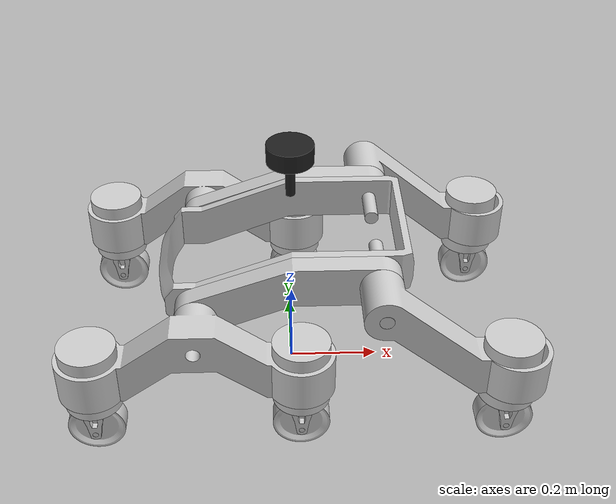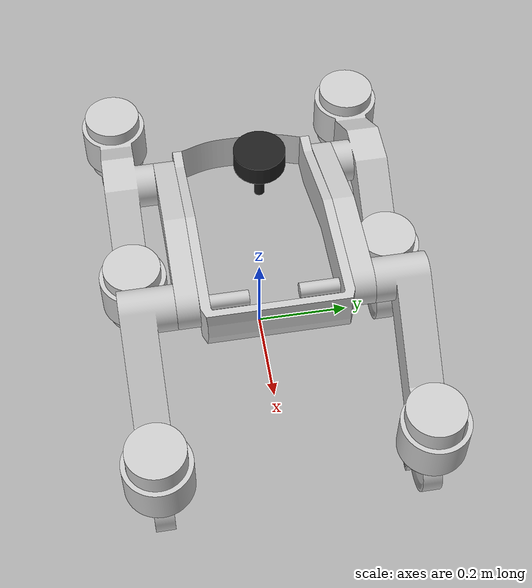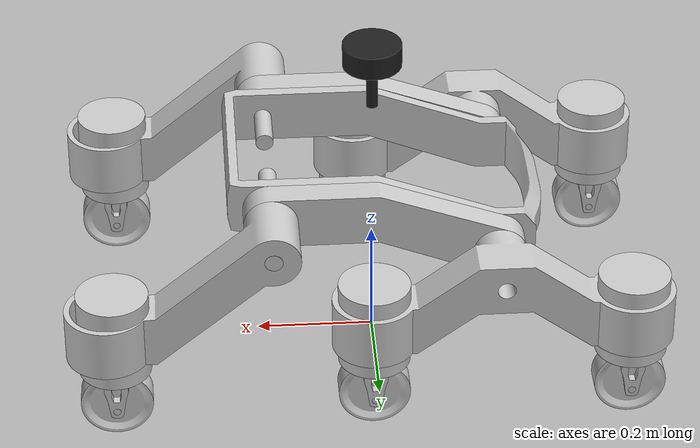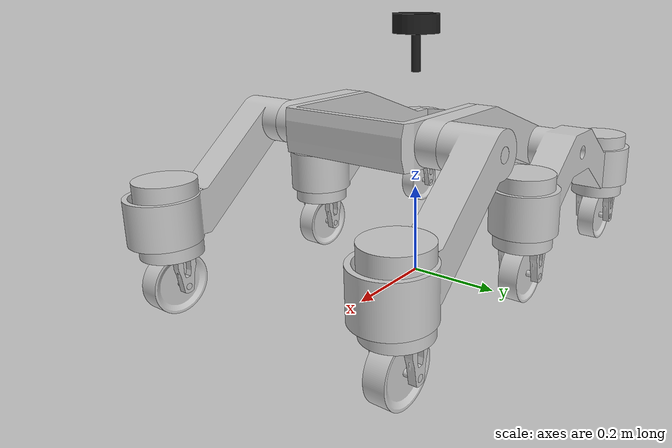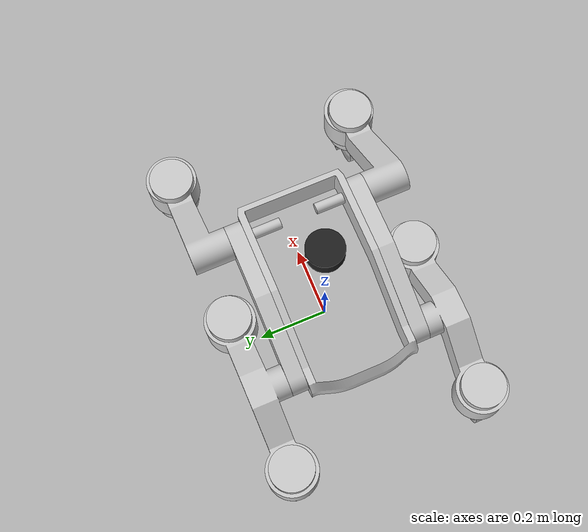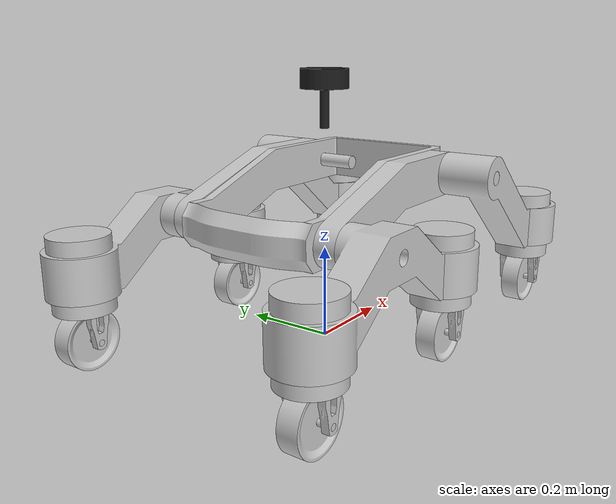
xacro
<?xml version="1.0"?>
<robot xmlns:xacro="http://www.ros.org/wiki/xacro">

  <xacro:include filename="base.urdf.xacro"/>
  <xacro:include filename="left_middle_arm.urdf.xacro"/>
  <xacro:include filename="left_front_arm.urdf.xacro"/>
  <xacro:include filename="left_back_arm.urdf.xacro"/>
  <xacro:include filename="lidar.urdf.xacro"/>
  <xacro:include filename="right_middle_arm.urdf.xacro"/>
  <xacro:include filename="right_front_arm.urdf.xacro"/>
  <xacro:include filename="right_back_arm.urdf.xacro"/>
  <xacro:include filename="wheel_steering.urdf.xacro"/>
  <xacro:include filename="wheel.urdf.xacro"/>

  <link name="base_link"/>

  <xacro:base name="base" parent="base_link">
    <origin xyz="0 0 0.355" rpy="0 0 0"/> <!-- wheels touch the ground with z=0.345-->
  </xacro:base>

  <!-- Add joints and links to simulation differential-like gears -->
  <!-- This is made in order to make the rotation of the shoulders to be the oposite to one another-->

  <joint name="shoulder_left_joint" type="continuous">
    <parent link="base"/>
    <child link="shoulder_left"/>
    <origin xyz="${-0.045+0.225} ${0.255/2 + 0.05} 0" rpy="0 0 ${pi/2}"/>
    <axis xyz="1 0 0"/>
    <limit effort="${10}" velocity="${360*2*pi/60}"/>
    <dynamics damping="0.1" friction="0.0"/>
  </joint>

  <link name="shoulder_left">
  </link>

  <joint name="shoulder_right_joint" type="continuous">
    <parent link="base"/>
    <child link="shoulder_right"/>
    <origin xyz="${-0.045+0.225} ${-0.255/2 - 0.05} 0" rpy="0 0 ${pi/2}"/>
    <axis xyz="1 0 0"/>
    <limit effort="${10}" velocity="${360*2*pi/60}"/>
    <dynamics damping="0.1" friction="0.0"/>
  </joint>

  <link name="shoulder_right">
  </link>
  <!-- End of differential-like gears -->

  <xacro:left_middle_arm name="left_middle_arm" parent="shoulder_left">
    <origin xyz="0 0 0" rpy="0 ${pi/2} 0"/>
  </xacro:left_middle_arm>

  <xacro:left_front_arm name="left_front_arm" parent="left_middle_arm">
    <origin xyz="${0.045/2 + 0.11 - 0.07/2} 0 0" rpy="0 0 0"/>
  </xacro:left_front_arm>

  <xacro:wheel_steering name="left_front_wheel" parent="left_front_arm">
    <origin xyz="0 ${-0.07-0.18-0.015} ${-0.15}" rpy="${pi} 0 0"/>
  </xacro:wheel_steering>

  <xacro:left_back_arm name="left_back_arm" parent="left_middle_arm">
    <origin xyz="${0.045/2 + 0.11 - 0.07/2} ${0.18 + 0.2} ${-0.075}" rpy="0 0 0"/>
  </xacro:left_back_arm>

  <xacro:wheel_steering name="left_middle_wheel" parent="left_back_arm">
    <origin xyz="0 ${-0.045 - 0.1 - 0.14/2} ${-0.075}" rpy="${pi} 0 0"/>
  </xacro:wheel_steering>

  <xacro:wheel_steering name="left_back_wheel" parent="left_back_arm">
    <origin xyz="0 ${0.045 + 0.1 + 0.14/2} ${-0.075}" rpy="${pi} 0 0"/>
  </xacro:wheel_steering>

  <xacro:right_middle_arm name="right_middle_arm" parent="shoulder_right">
    <origin xyz="0 0 0" rpy="0 ${pi/2} 0"/>
  </xacro:right_middle_arm>

  <xacro:right_front_arm name="right_front_arm" parent="right_middle_arm">
    <origin xyz="${-0.045/2 - 0.11 + 0.07/2} 0 0" rpy="0 0 0"/>
  </xacro:right_front_arm>

  <xacro:wheel_steering name="right_front_wheel" parent="right_front_arm">
    <origin xyz="0 ${-0.07-0.18-0.015} ${-0.15}" rpy="${pi} 0 0"/>
  </xacro:wheel_steering>

  <xacro:wheel_steering name="right_middle_wheel" parent="right_back_arm">
    <origin xyz="0 ${-0.045 - 0.1 - 0.14/2} ${-0.075}" rpy="${pi} 0 0"/>
  </xacro:wheel_steering>

  <xacro:wheel_steering name="right_back_wheel" parent="right_back_arm">
    <origin xyz="0 ${0.045 + 0.1 + 0.14/2} ${-0.075}" rpy="${pi} 0 0"/>
  </xacro:wheel_steering>

  <xacro:right_back_arm name="right_back_arm" parent="right_middle_arm">
    <origin xyz="${-0.045/2 - 0.11 + 0.07/2} ${0.18 + 0.2} ${-0.075}" rpy="0 0 0"/>
  </xacro:right_back_arm>

  <xacro:lidar name="lidar" parent="base">
    <origin xyz="0 0 0.2" rpy="0 0 0"/>
  </xacro:lidar>

</robot>

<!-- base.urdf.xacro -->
<robot xmlns:xacro="http://www.ros.org/wiki/xacro">

  <xacro:include filename="inertial_macros.urdf.xacro"/>

	<xacro:arg name="ignition" default="false"/>

	<xacro:macro name="base" params="name parent *origin">

    <joint name="${name}_joint" type="fixed">
			<parent link="${parent}"/>
			<child link="${name}"/>
			<xacro:insert_block name="origin"/>
			<axis xyz="0 0 1"/>
		</joint>

    <link name="${name}">
			<visual>
				<geometry>
					<mesh filename="package://forg_description/meshes/spine.dae"/>
				</geometry>
        <origin rpy="0 0 ${pi/2}"/>
			</visual>
			<collision>
				<geometry>
					<mesh filename="package://forg_description/meshes/spine.dae"/>
				</geometry>
        <origin rpy="0 0 ${pi/2}"/>
			</collision>
      <xacro:inertial_box mass="5" x="0.17" y="0.17" z="0.17"/> <!-- TODO replace with real values -->
		</link>

	</xacro:macro>
</robot>

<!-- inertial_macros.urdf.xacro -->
<robot xmlns:xacro="http://www.ros.org/wiki/xacro" >

    <!-- Specify some standard inertial calculations en.wikipedia.org/wiki/List_of_moments_of_inertia -->
    <!-- These make use of xacro's mathematical functionality -->

    <xacro:macro name="inertial_sphere" params="mass radius">
        <inertial>
            <mass value="${mass}" />
            <inertia ixx="${(2/5) * mass * (radius*radius)}" ixy="0.0" ixz="0.0"
                    iyy="${(2/5) * mass * (radius*radius)}" iyz="0.0"
                    izz="${(2/5) * mass * (radius*radius)}" />
        </inertial>
    </xacro:macro>

    <xacro:macro name="inertial_box" params="mass x y z">
        <inertial>
            <mass value="${mass}" />
            <inertia ixx="${(1/12) * mass * (y*y+z*z)}" ixy="0.0" ixz="0.0"
                    iyy="${(1/12) * mass * (x*x+z*z)}" iyz="0.0"
                    izz="${(1/12) * mass * (x*x+y*y)}" />
        </inertial>
    </xacro:macro>

    <xacro:macro name="inertial_cylinder" params="mass length radius">
        <inertial>
            <mass value="${mass}" />
            <inertia ixx="${(1/12) * mass * (3*radius*radius + length*length)}" ixy="0.0" ixz="0.0"
                    iyy="${(1/12) * mass * (3*radius*radius + length*length)}" iyz="0.0"
                    izz="${(1/2) * mass * (radius*radius)}" />
        </inertial>
    </xacro:macro>

</robot>

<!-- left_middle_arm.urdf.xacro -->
<robot xmlns:xacro="http://www.ros.org/wiki/xacro">

  <xacro:include filename="inertial_macros.urdf.xacro"/>

	<xacro:arg name="ignition" default="false"/>

	<xacro:macro name="left_middle_arm" params="name parent *origin">

    <joint name="${name}_shoulder_axis_joint" type="fixed">
			<parent link="${parent}"/>
			<child link="${name}_shoulder_axis"/>
			<xacro:insert_block name="origin"/>
			<axis xyz="0 0 1"/>
		</joint>

    <link name="${name}_shoulder_axis">
			<visual>
				<geometry>
					<mesh filename="package://forg_description/meshes/shoulder_axis.dae"/>
				</geometry>
			</visual>
			<collision>
				<geometry>
					<mesh filename="package://forg_description/meshes/shoulder_axis.dae"/>
				</geometry>
			</collision>
      <xacro:inertial_cylinder mass="0.05" length="0.17" radius="0.00625"/> <!-- TODO replace shoulder axis mass with real value -->
		</link>

    <joint name="${name}_joint" type="fixed">
			<parent link="${name}_shoulder_axis"/>
			<child link="${name}"/>
      <origin xyz="0 0 ${-0.005}" rpy="0 ${-pi/2} 0"/>
			<axis xyz="0 0 1"/>
		</joint>

    <link name="${name}">
			<visual>
				<geometry>
					<mesh filename="package://forg_description/meshes/middle_arm.dae"/>
				</geometry>
			</visual>
			<collision>
				<geometry>
					<mesh filename="package://forg_description/meshes/middle_arm.dae"/>
				</geometry>
			</collision>
      <xacro:inertial_box mass="0.05" x="0.17" y="0.00625" z="0.8"/> <!-- TODO replace shoulder axis mass with real value -->
		</link>

	</xacro:macro>
</robot>

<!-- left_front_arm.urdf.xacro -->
<robot xmlns:xacro="http://www.ros.org/wiki/xacro">

  <xacro:include filename="inertial_macros.urdf.xacro"/>

	<xacro:arg name="ignition" default="false"/>

	<xacro:macro name="left_front_arm" params="name parent *origin">

    <joint name="${name}_joint" type="fixed">
			<parent link="${parent}"/>
			<child link="${name}"/>
      <xacro:insert_block name="origin"/>
		</joint>

    <link name="${name}">
			<visual>
				<geometry>
					<mesh filename="package://forg_description/meshes/left_front_arm.dae"/>
				</geometry>
			</visual>
			<collision>
				<geometry>
					<mesh filename="package://forg_description/meshes/left_front_arm.dae"/>
				</geometry>
			</collision>
      <xacro:inertial_box mass="0.05" x="0.17" y="0.00625" z="0.8"/> <!-- TODO replace shoulder axis mass with real value -->
		</link>

	</xacro:macro>
</robot>

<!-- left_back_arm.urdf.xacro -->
<robot xmlns:xacro="http://www.ros.org/wiki/xacro">

  <xacro:include filename="inertial_macros.urdf.xacro"/>

	<xacro:arg name="ignition" default="false"/>

	<xacro:macro name="left_back_arm" params="name parent *origin">

    <joint name="${name}_joint" type="continuous">
			<parent link="${parent}"/>
			<child link="${name}"/>
      <xacro:insert_block name="origin"/>
			<axis xyz="1 0 0"/>
		</joint>

    <link name="${name}">
			<visual>
				<geometry>
					<mesh filename="package://forg_description/meshes/left_back_arm.dae"/>
				</geometry>
			</visual>
			<collision>
				<geometry>
					<mesh filename="package://forg_description/meshes/left_back_arm.dae"/>
				</geometry>
			</collision>
      <xacro:inertial_box mass="0.05" x="0.17" y="0.00625" z="0.8"/> <!-- TODO replace shoulder axis mass with real value -->
		</link>

	</xacro:macro>
</robot>

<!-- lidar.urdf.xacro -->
<robot xmlns:xacro="http://www.ros.org/wiki/xacro" >
  <xacro:include filename="inertial_macros.urdf.xacro"/>

	<xacro:macro name="lidar" params="name parent scan_topic:=scan *origin">
    <joint name="${name}_joint" type="fixed">
      <parent link="${parent}"/>
      <child link="${name}"/>
      <xacro:insert_block name="origin"/>
    </joint>

    <link name="${name}">
      <visual>
        <geometry>
          <cylinder radius="0.05" length="0.04"/>
        </geometry>
        <material name="black"/>
      </visual>
      <visual>
        <origin xyz="0 0 -0.05"/>
        <geometry>
          <cylinder radius="0.01" length="0.1"/>
        </geometry>
        <material name="black"/>
      </visual>
      <collision>
        <geometry>
          <cylinder radius="0.05" length="0.04"/>
        </geometry>
      </collision>
      <xacro:inertial_cylinder mass="0.1" length="0.04" radius="0.05"/>
    </link>

    <gazebo reference="${name}">
      <material>Gazebo/Black</material>

      <sensor name="$sensor_{name}" type="gpu_lidar">
        <pose> 0 0 0 0 0 0 </pose>
        <visualize>false</visualize>
        <update_rate>10</update_rate>
        <lidar>
          <scan>
            <horizontal>
              <samples>360</samples>
              <min_angle>-3.14</min_angle>
              <max_angle>3.14</max_angle>
            </horizontal>
          </scan>
          <range>
            <min>0.3</min>
            <max>12</max>
          </range>
        </lidar>
        <topic>${scan_topic}</topic>
        <gz_frame_id>${name}</gz_frame_id>
      </sensor>
    </gazebo>

  </xacro:macro>

</robot>

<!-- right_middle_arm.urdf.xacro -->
<robot xmlns:xacro="http://www.ros.org/wiki/xacro">

  <xacro:include filename="inertial_macros.urdf.xacro"/>

	<xacro:arg name="ignition" default="false"/>

	<xacro:macro name="right_middle_arm" params="name parent *origin">

    <joint name="${name}_shoulder_axis_joint" type="fixed">
			<parent link="${parent}"/>
			<child link="${name}_shoulder_axis"/>
			<xacro:insert_block name="origin"/>
			<axis xyz="0 0 1"/>
		</joint>

    <link name="${name}_shoulder_axis">
			<visual>
				<geometry>
					<mesh filename="package://forg_description/meshes/shoulder_axis.dae"/>
				</geometry>
			</visual>
			<collision>
				<geometry>
					<mesh filename="package://forg_description/meshes/shoulder_axis.dae"/>
				</geometry>
			</collision>
      <xacro:inertial_cylinder mass="0.05" length="0.17" radius="0.00625"/> <!-- TODO replace shoulder axis mass with real value -->
		</link>

    <joint name="${name}_joint" type="fixed">
			<parent link="${name}_shoulder_axis"/>
			<child link="${name}"/>
      <origin xyz="0 0 ${0.005}" rpy="0 ${-pi/2} 0"/>
			<axis xyz="0 0 1"/>
		</joint>

    <link name="${name}">
			<visual>
				<geometry>
					<mesh filename="package://forg_description/meshes/middle_arm.dae"/>
				</geometry>
			</visual>
			<collision>
				<geometry>
					<mesh filename="package://forg_description/meshes/middle_arm.dae"/>
				</geometry>
			</collision>
      <xacro:inertial_box mass="0.05" x="0.17" y="0.00625" z="0.8"/> <!-- TODO replace shoulder axis mass with real value -->
		</link>

	</xacro:macro>
</robot>

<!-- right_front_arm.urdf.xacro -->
<robot xmlns:xacro="http://www.ros.org/wiki/xacro">

  <xacro:include filename="inertial_macros.urdf.xacro"/>

	<xacro:arg name="ignition" default="false"/>

	<xacro:macro name="right_front_arm" params="name parent *origin">

    <joint name="${name}_joint" type="fixed">
			<parent link="${parent}"/>
			<child link="${name}"/>
      <xacro:insert_block name="origin"/>
		</joint>

    <link name="${name}">
			<visual>
				<geometry>
					<mesh filename="package://forg_description/meshes/right_front_arm.dae"/>
				</geometry>
			</visual>
			<collision>
				<geometry>
					<mesh filename="package://forg_description/meshes/right_front_arm.dae"/>
				</geometry>
			</collision>
      <xacro:inertial_box mass="0.05" x="0.17" y="0.00625" z="0.8"/> <!-- TODO replace shoulder axis mass with real value -->
		</link>

	</xacro:macro>
</robot>

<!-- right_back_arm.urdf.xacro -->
<robot xmlns:xacro="http://www.ros.org/wiki/xacro">

  <xacro:include filename="inertial_macros.urdf.xacro"/>

	<xacro:arg name="ignition" default="false"/>

	<xacro:macro name="right_back_arm" params="name parent *origin">

    <joint name="${name}_joint" type="continuous">
			<parent link="${parent}"/>
			<child link="${name}"/>
      <xacro:insert_block name="origin"/>
			<axis xyz="1 0 0"/>
		</joint>

    <link name="${name}">
			<visual>
				<geometry>
					<mesh filename="package://forg_description/meshes/right_back_arm.dae"/>
				</geometry>
			</visual>
			<collision>
				<geometry>
					<mesh filename="package://forg_description/meshes/right_back_arm.dae"/>
				</geometry>
			</collision>
      <xacro:inertial_box mass="0.05" x="0.17" y="0.00625" z="0.8"/> <!-- TODO replace shoulder axis mass with real value -->
		</link>

	</xacro:macro>
</robot>

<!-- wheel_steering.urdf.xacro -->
<robot xmlns:xacro="http://www.ros.org/wiki/xacro">

  <xacro:include filename="inertial_macros.urdf.xacro"/>
  <xacro:include filename="wheel.urdf.xacro"/>

	<xacro:macro name="wheel_steering" params="name parent *origin">

    <joint name="${name}_base_joint" type="fixed">
			<parent link="${parent}"/>
			<child link="${name}_base"/>
      <xacro:insert_block name="origin"/>
		</joint>

    <link name="${name}_base">
			<visual>
				<geometry>
					<mesh filename="package://forg_description/meshes/steering_base.dae"/>
				</geometry>
			</visual>
			<collision>
				<geometry>
					<mesh filename="package://forg_description/meshes/steering_base.dae"/>
				</geometry>
			</collision>
      <xacro:inertial_box mass="0.05" x="0.17" y="0.00625" z="0.8"/> <!-- TODO replace shoulder axis mass with real value -->
		</link>

    <joint name="${name}_steering_gear_joint" type="continuous">
			<parent link="${name}_base"/>
			<child link="${name}_steering_gear"/>
      <origin xyz="0 0 ${0.15/2 - 0.005}"/>
      <axis xyz="0 0 -1"/>
		</joint>

    <link name="${name}_steering_gear">
			<visual>
				<geometry>
					<mesh filename="package://forg_description/meshes/steering_gear.dae"/>
				</geometry>
			</visual>
			<collision>
				<geometry>
					<mesh filename="package://forg_description/meshes/steering_gear.dae"/>
				</geometry>
			</collision>
      <xacro:inertial_box mass="0.05" x="0.17" y="0.00625" z="0.8"/> <!-- TODO replace shoulder axis mass with real value -->
		</link>

    <joint name="${name}_steering_joint" type="fixed">
			<parent link="${name}_steering_gear"/>
			<child link="${name}_steering"/>
      <origin xyz="0 0 ${0.06 + 0.005}" rpy="-${pi/2} 0 0"/>
      <axis xyz="0 0 1"/>
		</joint>

    <link name="${name}_steering">
			<visual>
				<geometry>
					<mesh filename="package://forg_description/meshes/wheel_steering.dae"/>
				</geometry>
			</visual>
			<collision>
				<geometry>
					<mesh filename="package://forg_description/meshes/wheel_steering.dae"/>
				</geometry>
			</collision>
      <xacro:inertial_box mass="0.05" x="0.17" y="0.00625" z="0.8"/> <!-- TODO replace shoulder axis mass with real value -->
		</link>

  <xacro:wheel name="${name}" parent="${name}_steering">
      <origin rpy="0 ${pi/2} 0"/>
  </xacro:wheel>

	</xacro:macro>
</robot>

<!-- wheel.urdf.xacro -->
<robot xmlns:xacro="http://www.ros.org/wiki/xacro">

  <xacro:include filename="inertial_macros.urdf.xacro"/>

	<xacro:macro name="wheel" params="name parent *origin">

    <joint name="${name}_joint" type="continuous">
			<parent link="${parent}"/>
			<child link="${name}_axis"/>
			<xacro:insert_block name="origin"/>
			<axis xyz="0 0 1"/>
      <limit effort="${13.3*9.81*2.9}" velocity="${1000*2*pi/60}"/> <!-- TODO replace with motor limits -->
      <!-- TODO replace with motor + axis properties-->
		</joint>

		<link name="${name}_axis">
			<visual>
				<geometry>
					<mesh filename="package://forg_description/meshes/wheel_axis.dae"/>
				</geometry>
			</visual>
			<collision>
				<geometry>
					<mesh filename="package://forg_description/meshes/wheel_axis.dae"/>
				</geometry>
			</collision>
      <xacro:inertial_cylinder mass="0.05" length="0.17" radius="0.00625"/> <!-- TODO replace wheel axis mass with real value -->
		</link>

    <joint name="${name}_axis_joint" type="fixed">
			<parent link="${name}_axis"/>
			<child link="${name}"/>
      <origin rpy="0 ${-pi/2} 0"/>
			<axis xyz="1 0 0"/>
		</joint>

		<link name="${name}">
			<visual>
				<geometry>
					<mesh filename="package://forg_description/meshes/wheel.dae"/>
				</geometry>
			</visual>
			<collision>
				<geometry>
					<mesh filename="package://forg_description/meshes/wheel.dae"/>
				</geometry>
			</collision>
      <xacro:inertial_cylinder mass="0.2" length="0.015" radius="0.06"/> <!-- TODO replace wheel mass with real value -->
		</link>

	</xacro:macro>
</robot>
